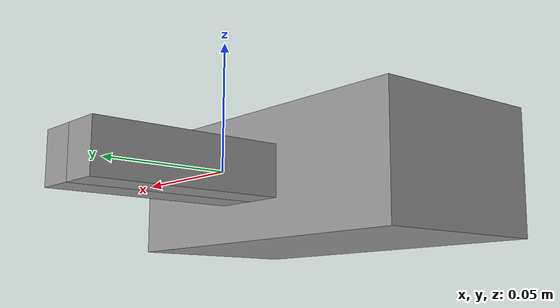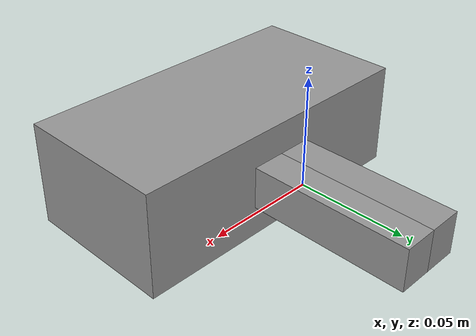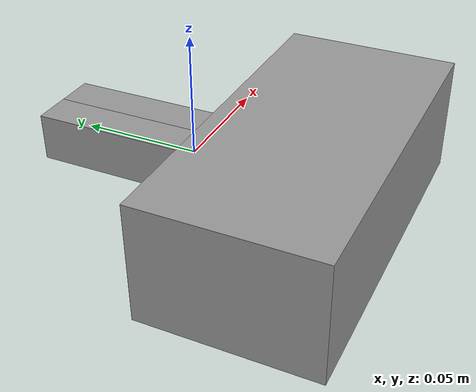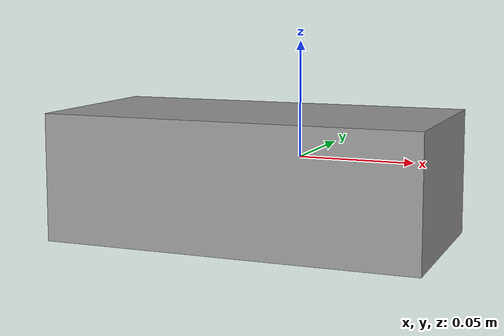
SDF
<?xml version='1.0'?>
<sdf version='1.6'>
  <model name='Schunk_Gripper'>
    <link name='body'>
      <pose frame=''>0 -0.049133 0 0 -0 0</pose>
      <inertial>
        <mass>0.988882</mass>
        <inertia>
          <ixx>0.162992</ixx>
          <ixy>0</ixy>
          <ixz>0</ixz>
          <iyy>0.162992</iyy>
          <iyz>0</iyz>
          <izz>0.164814</izz>
        </inertia>
        <pose frame=''>0 0 0 0 -0 0</pose>
      </inertial>
      <self_collide>0</self_collide>
      <kinematic>0</kinematic>
      <visual name='visual'>
        <pose frame=''>0 0 0 0 -0 0</pose>
        <geometry>
          <box>
            <size>0.146 0.0725 0.049521</size>
          </box>
        </geometry>
        <material>
          <lighting>1</lighting>
          <script>
            <uri>file://media/materials/scripts/gazebo.material</uri>
            <name>Gazebo/Grey</name>
          </script>
          <ambient>0.3 0.3 0.3 1</ambient>
          <diffuse>0.7 0.7 0.7 1</diffuse>
          <specular>0.01 0.01 0.01 1</specular>
          <emissive>0 0 0 1</emissive>
          <shader type='vertex'>
            <normal_map>__default__</normal_map>
          </shader>
        </material>
        <cast_shadows>1</cast_shadows>
        <transparency>0</transparency>
      </visual>
      <collision name='collision'>
        <laser_retro>0</laser_retro>
        <max_contacts>10</max_contacts>
        <pose frame=''>0 0 0 0 -0 0</pose>
        <geometry>
          <box>
            <size>0.146 0.0725 0.049521</size>
          </box>
        </geometry>
        <surface>
          <friction>
            <ode>
              <mu>1</mu>
              <mu2>1</mu2>
              <fdir1>0 0 0</fdir1>
              <slip1>0</slip1>
              <slip2>0</slip2>
            </ode>
            <torsional>
              <coefficient>1</coefficient>
              <patch_radius>0</patch_radius>
              <surface_radius>0</surface_radius>
              <use_patch_radius>1</use_patch_radius>
              <ode>
                <slip>0</slip>
              </ode>
            </torsional>
          </friction>
          <bounce>
            <restitution_coefficient>0</restitution_coefficient>
            <threshold>1e+06</threshold>
          </bounce>
          <contact>
            <collide_without_contact>0</collide_without_contact>
            <collide_without_contact_bitmask>1</collide_without_contact_bitmask>
            <collide_bitmask>1</collide_bitmask>
            <ode>
              <soft_cfm>0</soft_cfm>
              <soft_erp>0.2</soft_erp>
              <kp>1e+13</kp>
              <kd>1</kd>
              <max_vel>0.01</max_vel>
              <min_depth>0</min_depth>
            </ode>
            <bullet>
              <split_impulse>1</split_impulse>
              <split_impulse_penetration_threshold>-0.01</split_impulse_penetration_threshold>
              <soft_cfm>0</soft_cfm>
              <soft_erp>0.2</soft_erp>
              <kp>1e+13</kp>
              <kd>1</kd>
            </bullet>
          </contact>
        </surface>
      </collision>
    </link>
    <frame name='body_frame'>
      <pose frame='body'>0 0 0 0 0 0</pose>
    </frame>
    <link name='left_finger'>
      <pose frame=''>-0.008 0.025 0 0 -0 0</pose>
      <inertial>
        <mass>0.05</mass>
        <inertia>
          <ixx>0.16</ixx>
          <ixy>0</ixy>
          <ixz>0</ixz>
          <iyy>0.16</iyy>
          <iyz>0</iyz>
          <izz>0.16</izz>
        </inertia>
        <pose frame=''>0 0 0 0 -0 0</pose>
      </inertial>
      <self_collide>0</self_collide>
      <kinematic>0</kinematic>
      <visual name='visual'>
        <pose frame=''>0 0 0 0 -0 0</pose>
        <geometry>
          <box>
            <size>0.016 0.075 0.02</size>
          </box>
        </geometry>
        <material>
          <lighting>1</lighting>
          <script>
            <uri>file://media/materials/scripts/gazebo.material</uri>
            <name>Gazebo/Grey</name>
          </script>
          <ambient>0.3 0.3 0.3 1</ambient>
          <diffuse>0.7 0.7 0.7 1</diffuse>
          <specular>0.01 0.01 0.01 1</specular>
          <emissive>0 0 0 1</emissive>
          <shader type='vertex'>
            <normal_map>__default__</normal_map>
          </shader>
        </material>
        <cast_shadows>1</cast_shadows>
        <transparency>0</transparency>
      </visual>
      <collision name='collision'>
        <laser_retro>0</laser_retro>
        <max_contacts>10</max_contacts>
        <pose frame=''>0 0 0 0 -0 0</pose>
        <geometry>
          <box>
            <size>0.016 0.075 0.02</size>
          </box>
        </geometry>
        <surface>
          <friction>
            <ode>
              <mu>1</mu>
              <mu2>1</mu2>
              <fdir1>0 0 0</fdir1>
              <slip1>0</slip1>
              <slip2>0</slip2>
            </ode>
            <torsional>
              <coefficient>1</coefficient>
              <patch_radius>0</patch_radius>
              <surface_radius>0</surface_radius>
              <use_patch_radius>1</use_patch_radius>
              <ode>
                <slip>0</slip>
              </ode>
            </torsional>
          </friction>
          <bounce>
            <restitution_coefficient>0</restitution_coefficient>
            <threshold>1e+06</threshold>
          </bounce>
          <contact>
            <collide_without_contact>0</collide_without_contact>
            <collide_without_contact_bitmask>1</collide_without_contact_bitmask>
            <collide_bitmask>1</collide_bitmask>
            <ode>
              <soft_cfm>0</soft_cfm>
              <soft_erp>0.2</soft_erp>
              <kp>1e+13</kp>
              <kd>1</kd>
              <max_vel>0.01</max_vel>
              <min_depth>0</min_depth>
            </ode>
            <bullet>
              <split_impulse>1</split_impulse>
              <split_impulse_penetration_threshold>-0.01</split_impulse_penetration_threshold>
              <soft_cfm>0</soft_cfm>
              <soft_erp>0.2</soft_erp>
              <kp>1e+13</kp>
              <kd>1</kd>
            </bullet>
          </contact>
        </surface>
      </collision>
    </link>
    <link name='right_finger'>
      <pose frame=''>0.008 0.025 0 0 -0 0</pose>
      <inertial>
        <mass>0.05</mass>
        <inertia>
          <ixx>0.16</ixx>
          <ixy>0</ixy>
          <ixz>0</ixz>
          <iyy>0.16</iyy>
          <iyz>0</iyz>
          <izz>0.16</izz>
        </inertia>
        <pose frame=''>0 0 0 0 -0 0</pose>
      </inertial>
      <self_collide>0</self_collide>
      <kinematic>0</kinematic>
      <visual name='visual'>
        <pose frame=''>0 0 0 0 -0 0</pose>
        <geometry>
          <box>
            <size>0.016 0.075 0.02</size>
          </box>
        </geometry>
        <material>
          <lighting>1</lighting>
          <script>
            <uri>file://media/materials/scripts/gazebo.material</uri>
            <name>Gazebo/Grey</name>
          </script>
          <ambient>0.3 0.3 0.3 1</ambient>
          <diffuse>0.7 0.7 0.7 1</diffuse>
          <specular>0.01 0.01 0.01 1</specular>
          <emissive>0 0 0 1</emissive>
          <shader type='vertex'>
            <normal_map>__default__</normal_map>
          </shader>
        </material>
        <cast_shadows>1</cast_shadows>
        <transparency>0</transparency>
      </visual>
      <collision name='collision'>
        <laser_retro>0</laser_retro>
        <max_contacts>10</max_contacts>
        <pose frame=''>0 0 0 0 -0 0</pose>
        <geometry>
          <box>
            <size>0.016 0.075 0.02</size>
          </box>
        </geometry>
        <surface>
          <friction>
            <ode>
              <mu>1</mu>
              <mu2>1</mu2>
              <fdir1>0 0 0</fdir1>
              <slip1>0</slip1>
              <slip2>0</slip2>
            </ode>
            <torsional>
              <coefficient>1</coefficient>
              <patch_radius>0</patch_radius>
              <surface_radius>0</surface_radius>
              <use_patch_radius>1</use_patch_radius>
              <ode>
                <slip>0</slip>
              </ode>
            </torsional>
          </friction>
          <bounce>
            <restitution_coefficient>0</restitution_coefficient>
            <threshold>1e+06</threshold>
          </bounce>
          <contact>
            <collide_without_contact>0</collide_without_contact>
            <collide_without_contact_bitmask>1</collide_without_contact_bitmask>
            <collide_bitmask>1</collide_bitmask>
            <ode>
              <soft_cfm>0</soft_cfm>
              <soft_erp>0.2</soft_erp>
              <kp>1e+13</kp>
              <kd>1</kd>
              <max_vel>0.01</max_vel>
              <min_depth>0</min_depth>
            </ode>
            <bullet>
              <split_impulse>1</split_impulse>
              <split_impulse_penetration_threshold>-0.01</split_impulse_penetration_threshold>
              <soft_cfm>0</soft_cfm>
              <soft_erp>0.2</soft_erp>
              <kp>1e+13</kp>
              <kd>1</kd>
            </bullet>
          </contact>
        </surface>
      </collision>
    </link>
    <joint name='left_finger_sliding_joint' type='fixed'>
      <parent>body</parent>
      <child>left_finger</child>
      <pose frame=''>0 0 0 0 -0 0</pose>
    </joint>
    <joint name='right_finger_sliding_joint' type='fixed'>
      <parent>body</parent>
      <child>right_finger</child>
      <pose frame=''>0 0 0 0 -0 0</pose>
    </joint>
    <static>0</static>
    <allow_auto_disable>1</allow_auto_disable>
  </model>
</sdf>
